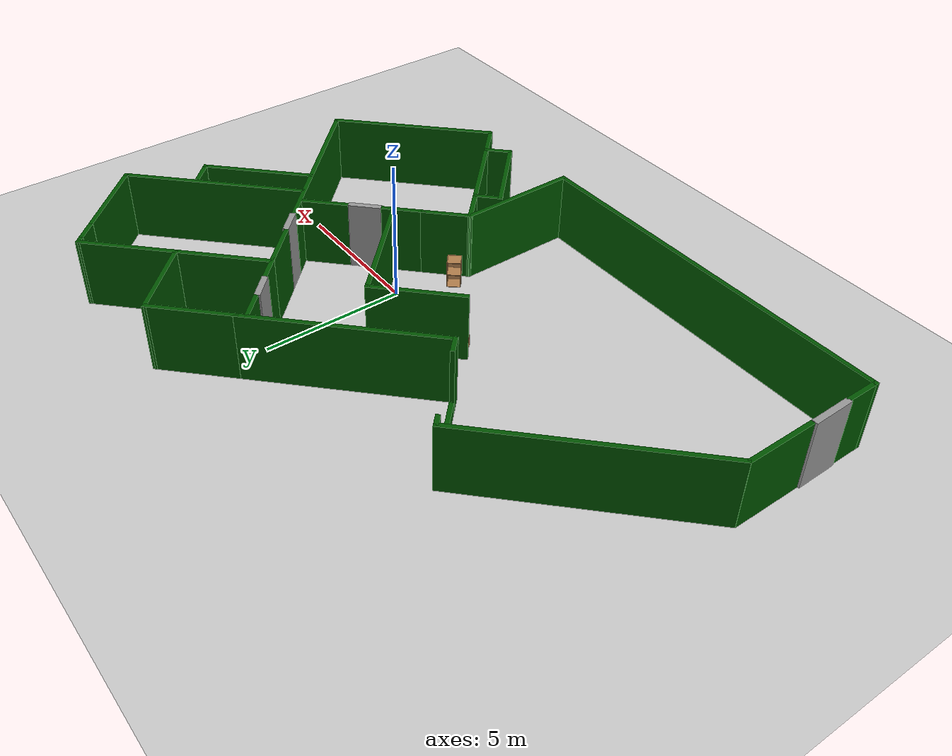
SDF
<sdf version="1.6">
 <world name="default">
  <light name="sun" type="directional">
   <pose>0 0 10 0 -0 0</pose>
   <diffuse>0.8 0.8 0.8 1</diffuse>
   <specular>0.2 0.2 0.2 1</specular>
   <attenuation>
    <range>1000</range>
    <constant>0.9</constant>
    <linear>0.01</linear>
    <quadratic>0.001</quadratic>
   </attenuation>
   <direction>-0.5 0.1 -0.9</direction>
  </light>
  <model name="ground_plane">
   <static>1</static>
   <link name="link">
    <collision name="collision">
     <geometry><plane><normal>0 0 1</normal><size>100 100</size></plane></geometry>
     <surface>
      <contact><collide_bitmask>65535</collide_bitmask></contact>
      <friction><ode><mu>100</mu><mu2>50</mu2></ode></friction>
     </surface>
    </collision>
    <visual name="visual">
     <cast_shadows>0</cast_shadows>
     <geometry><plane><normal>0 0 1</normal><size>100 100</size></plane></geometry>
     <material>
      <script><uri>file://media/materials/scripts/gazebo.material</uri><name>Gazebo/Grey</name></script>
     </material>
    </visual>
   </link>
  </model>
  <gravity>0 0 -9.8</gravity>
  <magnetic_field>6e-06 2.3e-05 -4.2e-05</magnetic_field>
  <atmosphere type="adiabatic"/>
  <physics name="default_physics" default="0" type="ode">
   <max_step_size>0.001</max_step_size>
   <real_time_factor>1</real_time_factor>
   <real_time_update_rate>1000</real_time_update_rate>
  </physics>
  <scene><ambient>0.4 0.4 0.4 1</ambient><background>0.7 0.7 0.7 1</background><shadows>1</shadows></scene>
  <spherical_coordinates>
   <surface_model>EARTH_WGS84</surface_model>
   <latitude_deg>0</latitude_deg>
   <longitude_deg>0</longitude_deg>
   <elevation>0</elevation>
   <heading_deg>0</heading_deg>
  </spherical_coordinates>
  <model name="bbt">
   <pose>-2.5667 0.93176 0 0 -0 0</pose>
   <link name="Door_1">
    <collision name="Door_1_Collision">
     <geometry><box><size>1.478 0.2 2.5</size></box></geometry>
     <pose>0 0 1.25 0 -0 0</pose>
    </collision>
    <visual name="Door_1_Visual">
     <pose>0 0 1.25 0 -0 0</pose>
     <geometry><box><size>1.478 0.2 2.5</size></box></geometry>
     <material>
      <script><uri>file://media/materials/scripts/gazebo.material</uri><name>Gazebo/Grey</name></script>
     </material>
    </visual>
    <pose>-11.138 -5.80498 0 0 0 -1.559</pose>
   </link>
   <link name="Door_2">
    <collision name="Door_2_Collision">
     <geometry><box><size>0.950191 0.2 2.5</size></box></geometry>
     <pose>0 0 1.25 0 -0 0</pose>
    </collision>
    <visual name="Door_2_Visual">
     <pose>0 0 1.25 0 -0 0</pose>
     <geometry><box><size>0.950191 0.2 2.5</size></box></geometry>
     <material>
      <script><uri>file://media/materials/scripts/gazebo.material</uri><name>Gazebo/Grey</name></script>
     </material>
    </visual>
    <pose>2.67637 3.97771 0 0 0 -0.774014</pose>
   </link>
   <link name="Door_3">
    <collision name="Door_3_Collision">
     <geometry><box><size>0.957 0.2 2.5</size></box></geometry>
     <pose>0 0 1.25 0 -0 0</pose>
    </collision>
    <visual name="Door_3_Visual">
     <pose>0 0 1.25 0 -0 0</pose>
     <geometry><box><size>0.957 0.2 2.5</size></box></geometry>
     <material>
      <script><uri>file://media/materials/scripts/gazebo.material</uri><name>Gazebo/Grey</name></script>
     </material>
    </visual>
    <pose>5.22308 1.50009 0 0 -0 2.35545</pose>
   </link>
   <link name="Door_4">
    <collision name="Door_4_Collision">
     <geometry><box><size>1.13353 0.2 2.5</size></box></geometry>
     <pose>0 0 1.25 0 -0 0</pose>
    </collision>
    <visual name="Door_4_Visual">
     <pose>0 0 1.25 0 -0 0</pose>
     <geometry><box><size>1.13353 0.2 2.5</size></box></geometry>
     <material>
      <script><uri>file://media/materials/scripts/gazebo.material</uri><name>Gazebo/Grey</name></script>
     </material>
    </visual>
    <pose>4.54927 -1.04667 0 0 -0 0.777183</pose>
   </link>
   <link name="Wall_101">
    <collision name="Wall_101_Collision">
     <geometry><box><size>8.25 0.15 2.5</size></box></geometry>
     <pose>0 0 1.25 0 -0 0</pose>
    </collision>
    <visual name="Wall_101_Visual">
     <pose>0 0 1.25 0 -0 0</pose>
     <geometry><box><size>8.25 0.15 2.5</size></box></geometry>
     <material>
      <script><uri>file://media/materials/scripts/gazebo.material</uri><name>Gazebo/Grey</name></script>
      <ambient>0 0.333333 0 1</ambient>
     </material>
     <meta><layer>0</layer></meta>
    </visual>
    <pose>-8.21971 0.309604 0 0 0 -2.35619</pose>
   </link>
   <link name="Wall_103">
    <collision name="Wall_103_Collision">
     <geometry><box><size>6.5 0.15 2.5</size></box></geometry>
     <pose>0 0 1.25 0 -0 0</pose>
    </collision>
    <visual name="Wall_103_Visual">
     <pose>0 0 1.25 0 -0 0</pose>
     <geometry><box><size>6.5 0.15 2.5</size></box></geometry>
     <material>
      <script><uri>file://media/materials/scripts/gazebo.material</uri><name>Gazebo/Grey</name></script>
      <ambient>0 0.333333 0 1</ambient>
     </material>
     <meta><layer>0</layer></meta>
    </visual>
    <pose>5.9401 5.39764 0 0 0 -2.35619</pose>
   </link>
   <link name="Wall_107">
    <collision name="Wall_107_Collision">
     <geometry><box><size>2.92372 0.15 2.5</size></box></geometry>
     <pose>0 0 1.25 0 -0 0</pose>
    </collision>
    <visual name="Wall_107_Visual">
     <pose>0 0 1.25 0 -0 0</pose>
     <geometry><box><size>2.92372 0.15 2.5</size></box></geometry>
     <material>
      <script><uri>file://media/materials/scripts/gazebo.material</uri><name>Gazebo/Grey</name></script>
      <ambient>0 0.333333 0 1</ambient>
     </material>
     <meta><layer>0</layer></meta>
    </visual>
    <pose>4.85167 6.3285 0 0 0 -0.786217</pose>
   </link>
   <link name="Wall_115">
    <collision name="Wall_115_Collision">
     <geometry><box><size>1.75 0.15 2.5</size></box></geometry>
     <pose>0 0 1.25 0 -0 0</pose>
    </collision>
    <visual name="Wall_115_Visual">
     <pose>0 0 1.25 0 -0 0</pose>
     <geometry><box><size>1.75 0.15 2.5</size></box></geometry>
     <material>
      <script><uri>file://media/materials/scripts/gazebo.material</uri><name>Gazebo/Grey</name></script>
      <ambient>0 0.333333 0 1</ambient>
     </material>
     <meta><layer>0</layer></meta>
    </visual>
    <pose>4.24783 2.4369 0 0 -0 2.35619</pose>
   </link>
   <link name="Wall_116">
    <collision name="Wall_116_Collision">
     <geometry><box><size>1 0.15 2.5</size></box></geometry>
     <pose>0 0 1.25 0 -0 0</pose>
    </collision>
    <visual name="Wall_116_Visual">
     <pose>0 0 1.25 0 -0 0</pose>
     <geometry><box><size>1 0.15 2.5</size></box></geometry>
     <material>
      <script><uri>file://media/materials/scripts/gazebo.material</uri><name>Gazebo/Grey</name></script>
      <ambient>0 0.333333 0 1</ambient>
     </material>
     <meta><layer>0</layer></meta>
    </visual>
    <pose>3.38163 3.30311 0 0 -0 2.35619</pose>
   </link>
   <link name="Wall_118">
    <collision name="Wall_118_Collision">
     <geometry><box><size>1 0.15 2.5</size></box></geometry>
     <pose>0 0 1.25 0 -0 0</pose>
    </collision>
    <visual name="Wall_118_Visual">
     <pose>0 0 1.25 0 -0 0</pose>
     <geometry><box><size>1 0.15 2.5</size></box></geometry>
     <material>
      <script><uri>file://media/materials/scripts/gazebo.material</uri><name>Gazebo/Grey</name></script>
      <ambient>0 0.333333 0 1</ambient>
     </material>
     <meta><layer>0</layer></meta>
    </visual>
    <pose>2.00277 4.68197 0 0 -0 2.35619</pose>
   </link>
   <link name="Wall_120">
    <collision name="Wall_120_Collision">
     <geometry><box><size>1.5 0.15 2.5</size></box></geometry>
     <pose>0 0 1.25 0 -0 0</pose>
    </collision>
    <visual name="Wall_120_Visual">
     <pose>0 0 1.25 0 -0 0</pose>
     <geometry><box><size>1.5 0.15 2.5</size></box></geometry>
     <material>
      <script><uri>file://media/materials/scripts/gazebo.material</uri><name>Gazebo/Grey</name></script>
      <ambient>0 0.333333 0 1</ambient>
     </material>
     <meta><layer>0</layer></meta>
    </visual>
    <pose>3.59376 -1.96484 0 0 -0 0.785398</pose>
   </link>
   <link name="Wall_122">
    <collision name="Wall_122_Collision">
     <geometry><box><size>1.75 0.15 2.5</size></box></geometry>
     <pose>0 0 1.25 0 -0 0</pose>
    </collision>
    <visual name="Wall_122_Visual">
     <pose>0 0 1.25 0 -0 0</pose>
     <geometry><box><size>1.75 0.15 2.5</size></box></geometry>
     <material>
      <script><uri>file://media/materials/scripts/gazebo.material</uri><name>Gazebo/Grey</name></script>
      <ambient>0 0.333333 0 1</ambient>
     </material>
     <meta><layer>0</layer></meta>
    </visual>
    <pose>5.54853 -0.007025 0 0 -0 0.785398</pose>
   </link>
   <link name="Wall_127">
    <collision name="Wall_127_Collision">
     <geometry><box><size>4.5 0.15 2.5</size></box></geometry>
     <pose>0 0 1.25 0 -0 0</pose>
    </collision>
    <visual name="Wall_127_Visual">
     <pose>0 0 1.25 0 -0 0</pose>
     <geometry><box><size>4.5 0.15 2.5</size></box></geometry>
     <material>
      <script><uri>file://media/materials/scripts/gazebo.material</uri><name>Gazebo/Grey</name></script>
      <ambient>0 0.333333 0 1</ambient>
     </material>
     <meta><layer>0</layer></meta>
    </visual>
    <pose>2.30242 -0.198915 0 0 -0 2.35619</pose>
   </link>
   <link name="Wall_130">
    <collision name="Wall_130_Collision">
     <geometry><box><size>3.25 0.15 2.5</size></box></geometry>
     <pose>0 0 1.25 0 -0 0</pose>
    </collision>
    <visual name="Wall_130_Visual">
     <pose>0 0 1.25 0 -0 0</pose>
     <geometry><box><size>3.25 0.15 2.5</size></box></geometry>
     <material>
      <script><uri>file://media/materials/scripts/gazebo.material</uri><name>Gazebo/Grey</name></script>
      <ambient>0 0.333333 0 1</ambient>
     </material>
     <meta><layer>0</layer></meta>
    </visual>
    <pose>-0.331551 0.243027 0 0 0 -2.35619</pose>
   </link>
   <link name="Wall_132">
    <collision name="Wall_132_Collision">
     <geometry><box><size>6 0.15 2.5</size></box></geometry>
     <pose>0 0 1.25 0 -0 0</pose>
    </collision>
    <visual name="Wall_132_Visual">
     <pose>0 0 1.25 0 -0 0</pose>
     <geometry><box><size>6 0.15 2.5</size></box></geometry>
     <material>
      <script><uri>file://media/materials/scripts/gazebo.material</uri><name>Gazebo/Grey</name></script>
      <ambient>0 0.333333 0 1</ambient>
     </material>
     <meta><layer>0</layer></meta>
    </visual>
    <pose>8.01318 -5.46502 0 0 -0 0.785398</pose>
   </link>
   <link name="Wall_134">
    <collision name="Wall_134_Collision">
     <geometry><box><size>6.5 0.15 2.5</size></box></geometry>
     <pose>0 0 1.25 0 -0 0</pose>
    </collision>
    <visual name="Wall_134_Visual">
     <pose>0 0 1.25 0 -0 0</pose>
     <geometry><box><size>6.5 0.15 2.5</size></box></geometry>
     <material>
      <script><uri>file://media/materials/scripts/gazebo.material</uri><name>Gazebo/Grey</name></script>
      <ambient>0 0.333333 0 1</ambient>
     </material>
     <meta><layer>0</layer></meta>
    </visual>
    <pose>7.8364 -1.15166 0 0 -0 2.35619</pose>
   </link>
   <link name="Wall_142">
    <collision name="Wall_142_Collision">
     <geometry><box><size>4.25025 0.15 2.5</size></box></geometry>
     <pose>0 0 1.25 0 -0 0</pose>
    </collision>
    <visual name="Wall_142_Visual">
     <pose>0 0 1.25 0 -0 0</pose>
     <geometry><box><size>4.25025 0.15 2.5</size></box></geometry>
     <material>
      <script><uri>file://media/materials/scripts/gazebo.material</uri><name>Gazebo/Grey</name></script>
      <ambient>0 0.333333 0 1</ambient>
     </material>
     <meta><layer>0</layer></meta>
    </visual>
    <pose>1.98487 -5.62363 0 0 -0 1.57069</pose>
   </link>
   <link name="Wall_37">
    <collision name="Wall_37_Collision">
     <geometry><box><size>1.75 0.15 2.5</size></box></geometry>
     <pose>0 0 1.25 0 -0 0</pose>
    </collision>
    <visual name="Wall_37_Visual">
     <pose>0 0 1.25 0 -0 0</pose>
     <geometry><box><size>1.75 0.15 2.5</size></box></geometry>
     <material>
      <script><uri>file://media/materials/scripts/gazebo.material</uri><name>Gazebo/Grey</name></script>
      <ambient>0 0.333333 0 1</ambient>
     </material>
     <meta><layer>0</layer></meta>
    </visual>
    <pose>2.55077 -3.00782 0 0 0 -2.35619</pose>
   </link>
   <link name="Wall_38">
    <collision name="Wall_38_Collision">
     <geometry><box><size>5.75 0.15 2.5</size></box></geometry>
     <pose>0 0 1.25 0 -0 0</pose>
    </collision>
    <visual name="Wall_38_Visual">
     <pose>0 0 1.25 0 -0 0</pose>
     <geometry><box><size>5.75 0.15 2.5</size></box></geometry>
     <material>
      <script><uri>file://media/materials/scripts/gazebo.material</uri><name>Gazebo/Grey</name></script>
      <ambient>0 0.333333 0 1</ambient>
     </material>
     <meta><layer>0</layer></meta>
    </visual>
    <pose>3.96499 -5.5534 0 0 0 -0.785398</pose>
   </link>
   <link name="Wall_42">
    <collision name="Wall_42_Collision">
     <geometry><box><size>6.5 0.15 2.5</size></box></geometry>
     <pose>0 0 1.25 0 -0 0</pose>
    </collision>
    <visual name="Wall_42_Visual">
     <pose>0 0 1.25 0 -0 0</pose>
     <geometry><box><size>6.5 0.15 2.5</size></box></geometry>
     <material>
      <script><uri>file://media/materials/scripts/gazebo.material</uri><name>Gazebo/Grey</name></script>
      <ambient>0 0.333333 0 1</ambient>
     </material>
     <meta><layer>0</layer></meta>
    </visual>
    <pose>8.83924 2.4486 0 0 -0 0.785398</pose>
   </link>
   <link name="Wall_43">
    <pose>9.63474 6.16818 0 0 -0 2.34766</pose>
    <visual name="Wall_43_Visual_0">
     <pose>-0.552979 0 1.25 0 -0 0</pose>
     <geometry><box><size>3.17948 0.15 2.5</size></box></geometry>
     <material>
      <script><uri>file://media/materials/scripts/gazebo.material</uri><name>Gazebo/Grey</name></script>
      <ambient>0 0.333333 0 1</ambient>
     </material>
     <meta><layer>0</layer></meta>
    </visual>
    <collision name="Wall_43_Collision_0">
     <geometry><box><size>3.17948 0.15 2.5</size></box></geometry>
     <pose>-0.552979 0 1.25 0 -0 0</pose>
    </collision>
    <visual name="Wall_43_Visual_1">
     <pose>1.58974 0 0.25 0 -0 0</pose>
     <geometry><box><size>1.10596 0.15 0.5</size></box></geometry>
     <material>
      <script><uri>file://media/materials/scripts/gazebo.material</uri><name>Gazebo/Grey</name></script>
      <ambient>0 0.333333 0 1</ambient>
     </material>
     <meta><layer>0</layer></meta>
    </visual>
    <collision name="Wall_43_Collision_1">
     <geometry><box><size>1.10596 0.15 0.5</size></box></geometry>
     <pose>1.58974 0 0.25 0 -0 0</pose>
    </collision>
    <visual name="Wall_43_Visual_2">
     <pose>1.98974 0 1.5 0 -0 0</pose>
     <geometry><box><size>0.305957 0.15 2</size></box></geometry>
     <material>
      <script><uri>file://media/materials/scripts/gazebo.material</uri><name>Gazebo/Grey</name></script>
      <ambient>0 0.333333 0 1</ambient>
     </material>
     <meta><layer>0</layer></meta>
    </visual>
    <collision name="Wall_43_Collision_2">
     <geometry><box><size>0.305957 0.15 2</size></box></geometry>
     <pose>1.98974 0 1.5 0 -0 0</pose>
    </collision>
    <visual name="Wall_43_Visual_3">
     <pose>1.43676 0 1.9 0 -0 0</pose>
     <geometry><box><size>0.8 0.15 1.2</size></box></geometry>
     <material>
      <script><uri>file://media/materials/scripts/gazebo.material</uri><name>Gazebo/Grey</name></script>
      <ambient>0 0.333333 0 1</ambient>
     </material>
     <meta><layer>0</layer></meta>
    </visual>
    <collision name="Wall_43_Collision_3">
     <geometry><box><size>0.8 0.15 1.2</size></box></geometry>
     <pose>1.43676 0 1.9 0 -0 0</pose>
    </collision>
   </link>
   <link name="Wall_46">
    <collision name="Wall_46_Collision">
     <geometry><box><size>3 0.15 2.5</size></box></geometry>
     <pose>0 0 1.25 0 -0 0</pose>
    </collision>
    <visual name="Wall_46_Visual">
     <pose>0 0 1.25 0 -0 0</pose>
     <geometry><box><size>3 0.15 2.5</size></box></geometry>
     <material>
      <script><uri>file://media/materials/scripts/gazebo.material</uri><name>Gazebo/Grey</name></script>
      <ambient>0 0.333333 0 1</ambient>
     </material>
     <meta><layer>0</layer></meta>
    </visual>
    <pose>2.86419 6.30233 0 0 -0 0.785398</pose>
   </link>
   <link name="Wall_49">
    <collision name="Wall_49_Collision">
     <geometry><box><size>6.75 0.15 2.5</size></box></geometry>
     <pose>0 0 1.25 0 -0 0</pose>
    </collision>
    <visual name="Wall_49_Visual">
     <pose>0 0 1.25 0 -0 0</pose>
     <geometry><box><size>6.75 0.15 2.5</size></box></geometry>
     <material>
      <script><uri>file://media/materials/scripts/gazebo.material</uri><name>Gazebo/Grey</name></script>
      <ambient>0 0.333333 0 1</ambient>
     </material>
     <meta><layer>0</layer></meta>
    </visual>
    <pose>-0.476892 2.96125 0 0 0 -2.35619</pose>
   </link>
   <link name="Wall_50">
    <pose>-4.08314 1.90059 0 0 -0 2.35619</pose>
    <visual name="Wall_50_Visual_0">
     <pose>-1.54487 0 1.25 0 -0 0</pose>
     <geometry><box><size>0.660258 0.15 2.5</size></box></geometry>
     <material>
      <script><uri>file://media/materials/scripts/gazebo.material</uri><name>Gazebo/Grey</name></script>
      <ambient>0 0.333333 0 1</ambient>
     </material>
     <meta><layer>0</layer></meta>
    </visual>
    <collision name="Wall_50_Collision_0">
     <geometry><box><size>0.660258 0.15 2.5</size></box></geometry>
     <pose>-1.54487 0 1.25 0 -0 0</pose>
    </collision>
    <visual name="Wall_50_Visual_1">
     <pose>0.330129 0 0.25 0 -0 0</pose>
     <geometry><box><size>3.08974 0.15 0.5</size></box></geometry>
     <material>
      <script><uri>file://media/materials/scripts/gazebo.material</uri><name>Gazebo/Grey</name></script>
      <ambient>0 0.333333 0 1</ambient>
     </material>
     <meta><layer>0</layer></meta>
    </visual>
    <collision name="Wall_50_Collision_1">
     <geometry><box><size>3.08974 0.15 0.5</size></box></geometry>
     <pose>0.330129 0 0.25 0 -0 0</pose>
    </collision>
    <visual name="Wall_50_Visual_2">
     <pose>1.64013 0 1.5 0 -0 0</pose>
     <geometry><box><size>0.469742 0.15 2</size></box></geometry>
     <material>
      <script><uri>file://media/materials/scripts/gazebo.material</uri><name>Gazebo/Grey</name></script>
      <ambient>0 0.333333 0 1</ambient>
     </material>
     <meta><layer>0</layer></meta>
    </visual>
    <collision name="Wall_50_Collision_2">
     <geometry><box><size>0.469742 0.15 2</size></box></geometry>
     <pose>1.64013 0 1.5 0 -0 0</pose>
    </collision>
   </link>
   <link name="Wall_62">
    <collision name="Wall_62_Collision">
     <geometry><box><size>1 0.15 2.5</size></box></geometry>
     <pose>0 0 1.25 0 -0 0</pose>
    </collision>
    <visual name="Wall_62_Visual">
     <pose>0 0 1.25 0 -0 0</pose>
     <geometry><box><size>1 0.15 2.5</size></box></geometry>
     <material>
      <script><uri>file://media/materials/scripts/gazebo.material</uri><name>Gazebo/Grey</name></script>
      <ambient>0 0.333333 0 1</ambient>
     </material>
     <meta><layer>0</layer></meta>
    </visual>
    <pose>9.68625 2.4606 0 0 0 -0.785398</pose>
   </link>
   <link name="Wall_63">
    <collision name="Wall_63_Collision">
     <geometry><box><size>4 0.15 2.5</size></box></geometry>
     <pose>0 0 1.25 0 -0 0</pose>
    </collision>
    <visual name="Wall_63_Visual">
     <pose>0 0 1.25 0 -0 0</pose>
     <geometry><box><size>4 0.15 2.5</size></box></geometry>
     <material>
      <script><uri>file://media/materials/scripts/gazebo.material</uri><name>Gazebo/Grey</name></script>
      <ambient>0 0.333333 0 1</ambient>
     </material>
     <meta><layer>0</layer></meta>
    </visual>
    <pose>8.6256 0.798899 0 0 0 -2.35619</pose>
   </link>
   <link name="Wall_65">
    <collision name="Wall_65_Collision">
     <geometry><box><size>1 0.15 2.5</size></box></geometry>
     <pose>0 0 1.25 0 -0 0</pose>
    </collision>
    <visual name="Wall_65_Visual">
     <pose>0 0 1.25 0 -0 0</pose>
     <geometry><box><size>1 0.15 2.5</size></box></geometry>
     <material>
      <script><uri>file://media/materials/scripts/gazebo.material</uri><name>Gazebo/Grey</name></script>
      <ambient>0 0.333333 0 1</ambient>
     </material>
     <meta><layer>0</layer></meta>
    </visual>
    <pose>2.55622 -4.76877 0 0 0 -2.35619</pose>
   </link>
   <link name="Wall_66">
    <collision name="Wall_66_Collision">
     <geometry><box><size>3.25 0.15 2.5</size></box></geometry>
     <pose>0 0 1.25 0 -0 0</pose>
    </collision>
    <visual name="Wall_66_Visual">
     <pose>0 0 1.25 0 -0 0</pose>
     <geometry><box><size>3.25 0.15 2.5</size></box></geometry>
     <material>
      <script><uri>file://media/materials/scripts/gazebo.material</uri><name>Gazebo/Grey</name></script>
      <ambient>0 0.333333 0 1</ambient>
     </material>
     <meta><layer>0</layer></meta>
    </visual>
    <pose>3.35172 -6.16531 0 0 0 -0.785398</pose>
   </link>
   <link name="Wall_67">
    <collision name="Wall_67_Collision">
     <geometry><box><size>1 0.15 2.5</size></box></geometry>
     <pose>0 0 1.25 0 -0 0</pose>
    </collision>
    <visual name="Wall_67_Visual">
     <pose>0 0 1.25 0 -0 0</pose>
     <geometry><box><size>1 0.15 2.5</size></box></geometry>
     <material>
      <script><uri>file://media/materials/scripts/gazebo.material</uri><name>Gazebo/Grey</name></script>
      <ambient>0 0.333333 0 1</ambient>
     </material>
     <meta><layer>0</layer></meta>
    </visual>
    <pose>4.74825 -6.9608 0 0 -0 0.785398</pose>
   </link>
   <link name="Wall_92">
    <collision name="Wall_92_Collision">
     <geometry><box><size>13.25 0.15 2.5</size></box></geometry>
     <pose>0 0 1.25 0 -0 0</pose>
    </collision>
    <visual name="Wall_92_Visual">
     <pose>0 0 1.25 0 -0 0</pose>
     <geometry><box><size>13.25 0.15 2.5</size></box></geometry>
     <material>
      <script><uri>file://media/materials/scripts/gazebo.material</uri><name>Gazebo/Grey</name></script>
      <ambient>0 0.333333 0 1</ambient>
     </material>
     <meta><layer>0</layer></meta>
    </visual>
    <pose>-4.56534 -7.67376 0 0 -0 3.14159</pose>
   </link>
   <link name="Wall_97">
    <collision name="Wall_97_Collision">
     <geometry><box><size>1.25 0.15 2.5</size></box></geometry>
     <pose>0 0 1.25 0 -0 0</pose>
    </collision>
    <visual name="Wall_97_Visual">
     <pose>0 0 1.25 0 -0 0</pose>
     <geometry><box><size>1.25 0.15 2.5</size></box></geometry>
     <material>
      <script><uri>file://media/materials/scripts/gazebo.material</uri><name>Gazebo/Grey</name></script>
      <ambient>0 0.333333 0 1</ambient>
     </material>
     <meta><layer>0</layer></meta>
    </visual>
    <pose>-11.1151 -7.12363 0 0 -0 1.57041</pose>
   </link>
   <link name="Wall_99">
    <collision name="Wall_99_Collision">
     <geometry><box><size>2.5 0.15 2.5</size></box></geometry>
     <pose>0 0 1.25 0 -0 0</pose>
    </collision>
    <visual name="Wall_99_Visual">
     <pose>0 0 1.25 0 -0 0</pose>
     <geometry><box><size>2.5 0.15 2.5</size></box></geometry>
     <material>
      <script><uri>file://media/materials/scripts/gazebo.material</uri><name>Gazebo/Grey</name></script>
      <ambient>0 0.333333 0 1</ambient>
     </material>
     <meta><layer>0</layer></meta>
    </visual>
    <pose>-11.1149 -3.79851 0 0 -0 1.5708</pose>
   </link>
   <static>1</static>
  </model>
  <model name="cabinet">
   <static>1</static>
   <link name="cabinet_bottom_plate">
    <inertial>
     <pose>0 0 -1 0 -0 0</pose>
     <inertia><ixx>2.05</ixx><ixy>0</ixy><ixz>0</ixz><iyy>2.05</iyy><iyz>0</iyz><izz>2.05</izz></inertia>
     <mass>25</mass>
    </inertial>
    <collision name="cabinet_bottom_plate_geom">
     <pose>0 0 0.01 0 -0 0</pose>
     <geometry><box><size>0.45 0.45 0.02</size></box></geometry>
    </collision>
    <visual name="cabinet_bottom_plate_geom_visual">
     <pose>0 0 0.01 0 -0 0</pose>
     <geometry><box><size>0.45 0.45 0.02</size></box></geometry>
     <material>
      <script><uri>file://media/materials/scripts/gazebo.material</uri><name>Gazebo/Wood</name></script>
     </material>
    </visual>
    <collision name="cabinet_bottom_plate_geom_cabinet_back_plate">
     <pose>0.235 0 0.51 0 -0 0</pose>
     <geometry><box><size>0.02 0.45 1.02</size></box></geometry>
    </collision>
    <visual name="cabinet_bottom_plate_geom_cabinet_back_plate_visual">
     <pose>0.235 0 0.51 0 -0 0</pose>
     <geometry><box><size>0.02 0.45 1.02</size></box></geometry>
     <material>
      <script><uri>file://media/materials/scripts/gazebo.material</uri><name>Gazebo/Wood</name></script>
     </material>
    </visual>
    <collision name="cabinet_bottom_plate_geom_cabinet_left_plate">
     <pose>0 0.235 0.51 0 -0 0</pose>
     <geometry><box><size>0.45 0.02 1.02</size></box></geometry>
    </collision>
    <visual name="cabinet_bottom_plate_geom_cabinet_left_plate_visual">
     <pose>0 0.235 0.51 0 -0 0</pose>
     <geometry><box><size>0.45 0.02 1.02</size></box></geometry>
     <material>
      <script><uri>file://media/materials/scripts/gazebo.material</uri><name>Gazebo/Wood</name></script>
     </material>
    </visual>
    <collision name="cabinet_bottom_plate_geom_cabinet_middle_plate">
     <pose>0 0 0.51 0 -0 0</pose>
     <geometry><box><size>0.45 0.45 0.02</size></box></geometry>
    </collision>
    <visual name="cabinet_bottom_plate_geom_cabinet_middle_plate_visual">
     <pose>0 0 0.51 0 -0 0</pose>
     <geometry><box><size>0.45 0.45 0.02</size></box></geometry>
     <material>
      <script><uri>file://media/materials/scripts/gazebo.material</uri><name>Gazebo/Wood</name></script>
     </material>
    </visual>
    <collision name="cabinet_bottom_plate_geom_cabinet_right_plate">
     <pose>0 -0.235 0.51 0 -0 0</pose>
     <geometry><box><size>0.45 0.02 1.02</size></box></geometry>
    </collision>
    <visual name="cabinet_bottom_plate_geom_cabinet_right_plate_visual">
     <pose>0 -0.235 0.51 0 -0 0</pose>
     <geometry><box><size>0.45 0.02 1.02</size></box></geometry>
     <material>
      <script><uri>file://media/materials/scripts/gazebo.material</uri><name>Gazebo/Wood</name></script>
     </material>
    </visual>
    <collision name="cabinet_bottom_plate_geom_cabinet_top_plate">
     <pose>0 0 1.01 0 -0 0</pose>
     <geometry><box><size>0.45 0.45 0.02</size></box></geometry>
    </collision>
    <visual name="cabinet_bottom_plate_geom_cabinet_top_plate_visual">
     <pose>0 0 1.01 0 -0 0</pose>
     <geometry><box><size>0.45 0.45 0.02</size></box></geometry>
     <material>
      <script><uri>file://media/materials/scripts/gazebo.material</uri><name>Gazebo/Wood</name></script>
     </material>
    </visual>
   </link>
   <pose>-3.53709 -0.102774 0 -0 0.05 0.72918</pose>
  </model>
  <model name="cabinet_0">
   <static>1</static>
   <link name="cabinet_bottom_plate">
    <inertial>
     <pose>0 0 -1 0 -0 0</pose>
     <inertia><ixx>2.05</ixx><ixy>0</ixy><ixz>0</ixz><iyy>2.05</iyy><iyz>0</iyz><izz>2.05</izz></inertia>
     <mass>25</mass>
    </inertial>
    <collision name="cabinet_bottom_plate_geom">
     <pose>0 0 0.01 0 -0 0</pose>
     <geometry><box><size>0.45 0.45 0.02</size></box></geometry>
    </collision>
    <visual name="cabinet_bottom_plate_geom_visual">
     <pose>0 0 0.01 0 -0 0</pose>
     <geometry><box><size>0.45 0.45 0.02</size></box></geometry>
     <material>
      <script><uri>file://media/materials/scripts/gazebo.material</uri><name>Gazebo/Wood</name></script>
     </material>
    </visual>
    <collision name="cabinet_bottom_plate_geom_cabinet_back_plate">
     <pose>0.235 0 0.51 0 -0 0</pose>
     <geometry><box><size>0.02 0.45 1.02</size></box></geometry>
    </collision>
    <visual name="cabinet_bottom_plate_geom_cabinet_back_plate_visual">
     <pose>0.235 0 0.51 0 -0 0</pose>
     <geometry><box><size>0.02 0.45 1.02</size></box></geometry>
     <material>
      <script><uri>file://media/materials/scripts/gazebo.material</uri><name>Gazebo/Wood</name></script>
     </material>
    </visual>
    <collision name="cabinet_bottom_plate_geom_cabinet_left_plate">
     <pose>0 0.235 0.51 0 -0 0</pose>
     <geometry><box><size>0.45 0.02 1.02</size></box></geometry>
    </collision>
    <visual name="cabinet_bottom_plate_geom_cabinet_left_plate_visual">
     <pose>0 0.235 0.51 0 -0 0</pose>
     <geometry><box><size>0.45 0.02 1.02</size></box></geometry>
     <material>
      <script><uri>file://media/materials/scripts/gazebo.material</uri><name>Gazebo/Wood</name></script>
     </material>
    </visual>
    <collision name="cabinet_bottom_plate_geom_cabinet_middle_plate">
     <pose>0 0 0.51 0 -0 0</pose>
     <geometry><box><size>0.45 0.45 0.02</size></box></geometry>
    </collision>
    <visual name="cabinet_bottom_plate_geom_cabinet_middle_plate_visual">
     <pose>0 0 0.51 0 -0 0</pose>
     <geometry><box><size>0.45 0.45 0.02</size></box></geometry>
     <material>
      <script><uri>file://media/materials/scripts/gazebo.material</uri><name>Gazebo/Wood</name></script>
     </material>
    </visual>
    <collision name="cabinet_bottom_plate_geom_cabinet_right_plate">
     <pose>0 -0.235 0.51 0 -0 0</pose>
     <geometry><box><size>0.45 0.02 1.02</size></box></geometry>
    </collision>
    <visual name="cabinet_bottom_plate_geom_cabinet_right_plate_visual">
     <pose>0 -0.235 0.51 0 -0 0</pose>
     <geometry><box><size>0.45 0.02 1.02</size></box></geometry>
     <material>
      <script><uri>file://media/materials/scripts/gazebo.material</uri><name>Gazebo/Wood</name></script>
     </material>
    </visual>
    <collision name="cabinet_bottom_plate_geom_cabinet_top_plate">
     <pose>0 0 1.01 0 -0 0</pose>
     <geometry><box><size>0.45 0.45 0.02</size></box></geometry>
    </collision>
    <visual name="cabinet_bottom_plate_geom_cabinet_top_plate_visual">
     <pose>0 0 1.01 0 -0 0</pose>
     <geometry><box><size>0.45 0.45 0.02</size></box></geometry>
     <material>
      <script><uri>file://media/materials/scripts/gazebo.material</uri><name>Gazebo/Wood</name></script>
     </material>
    </visual>
   </link>
   <pose>-0.647268 -1.95789 0 0 0 -0.716815</pose>
  </model>
  <model name="my_ball">
   <link name="link_0">
    <pose>0.026334 0.582163 -0 0 -0 0</pose>
    <inertial>
     <mass>1</mass>
     <inertia><ixx>0.1</ixx><ixy>0</ixy><ixz>0</ixz><iyy>0.1</iyy><iyz>0</iyz><izz>0.1</izz></inertia>
    </inertial>
    <visual name="visual">
     <geometry><sphere><radius>0.1</radius></sphere></geometry>
     <material>
      <lighting>1</lighting>
      <script><uri>file://media/materials/scripts/gazebo.material</uri><name>Gazebo/Grey</name></script>
      <shader type="pixel"><normal_map>__default__</normal_map></shader>
      <ambient>1 1 1 1</ambient>
      <diffuse>1 1 1 1</diffuse>
      <specular>1 1 1 1</specular>
      <emissive>1 1 1 1</emissive>
     </material>
    </visual>
    <collision name="collision">
     <geometry><sphere><radius>0.1</radius></sphere></geometry>
     <surface>
      <friction>
       <ode><mu>1</mu><mu2>1</mu2><fdir1>0 0 0</fdir1><slip1>0</slip1><slip2>0</slip2></ode>
       <torsional>
        <coefficient>1</coefficient>
        <patch_radius>0</patch_radius>
        <surface_radius>0</surface_radius>
        <use_patch_radius>1</use_patch_radius>
        <ode><slip>0</slip></ode>
       </torsional>
      </friction>
      <bounce><restitution_coefficient>0</restitution_coefficient><threshold>1e+06</threshold></bounce>
      <contact>
       <collide_without_contact>0</collide_without_contact>
       <collide_without_contact_bitmask>1</collide_without_contact_bitmask>
       <collide_bitmask>1</collide_bitmask>
       <ode>
        <soft_cfm>0</soft_cfm>
        <soft_erp>0.2</soft_erp>
        <kp>1e+13</kp>
        <kd>1</kd>
        <max_vel>0.01</max_vel>
        <min_depth>0</min_depth>
       </ode>
       <bullet>
        <split_impulse>1</split_impulse>
        <split_impulse_penetration_threshold>-0.01</split_impulse_penetration_threshold>
        <soft_cfm>0</soft_cfm>
        <soft_erp>0.2</soft_erp>
        <kp>1e+13</kp>
        <kd>1</kd>
       </bullet>
      </contact>
     </surface>
    </collision>
   </link>
   <static>0</static>
   <pose>-8.0348 -8.245 0.1 0 -0 0</pose>
  </model>
 </world>
</sdf>
